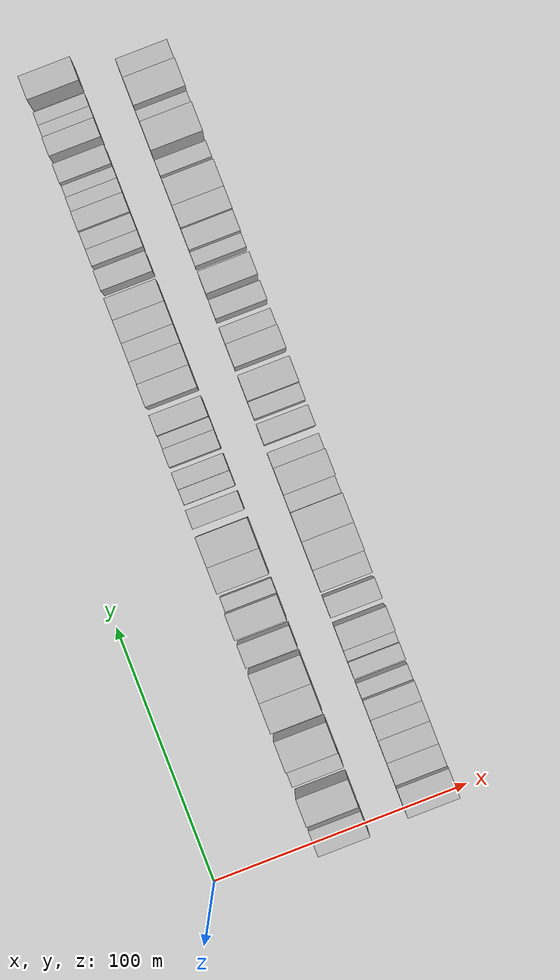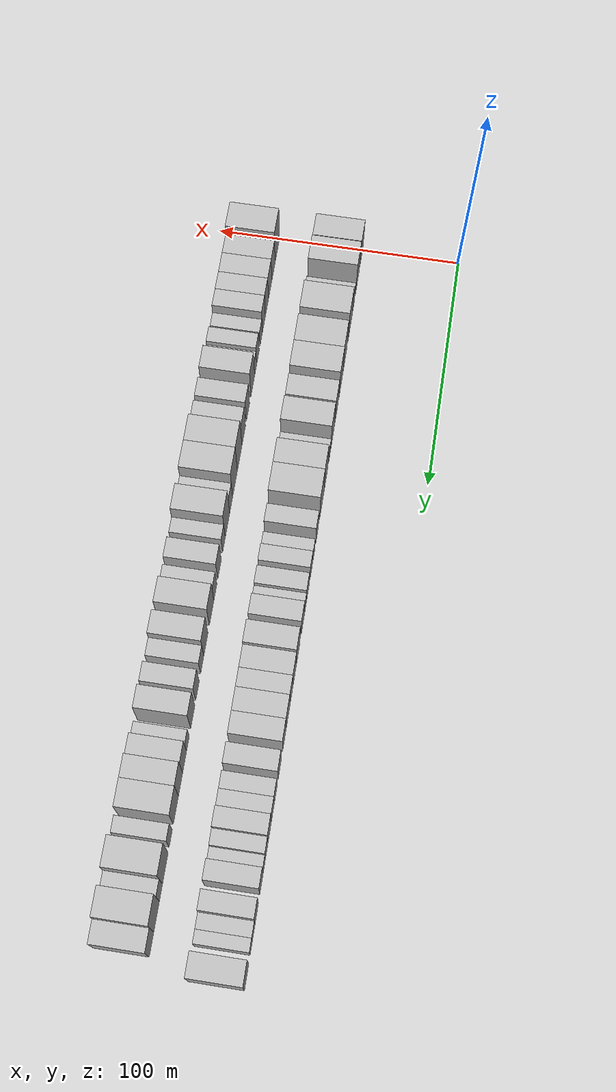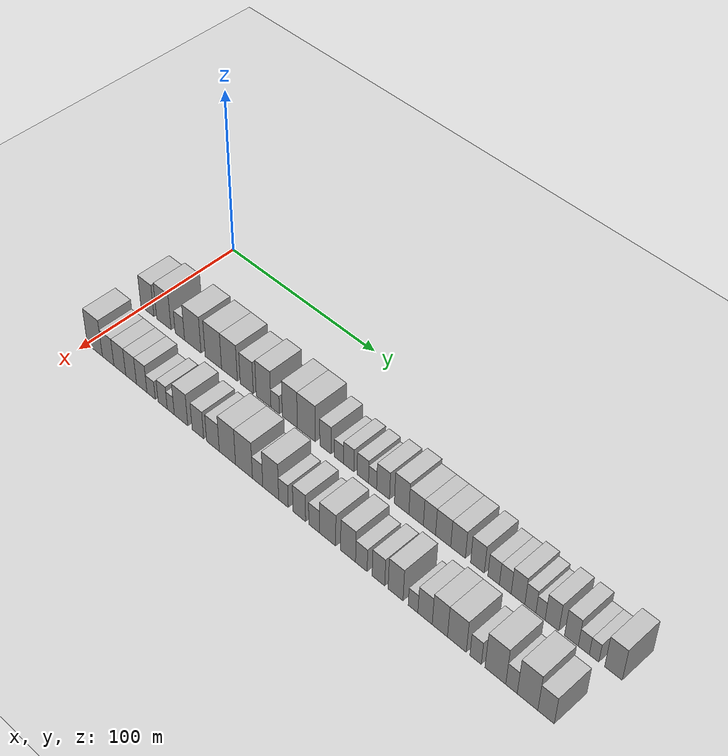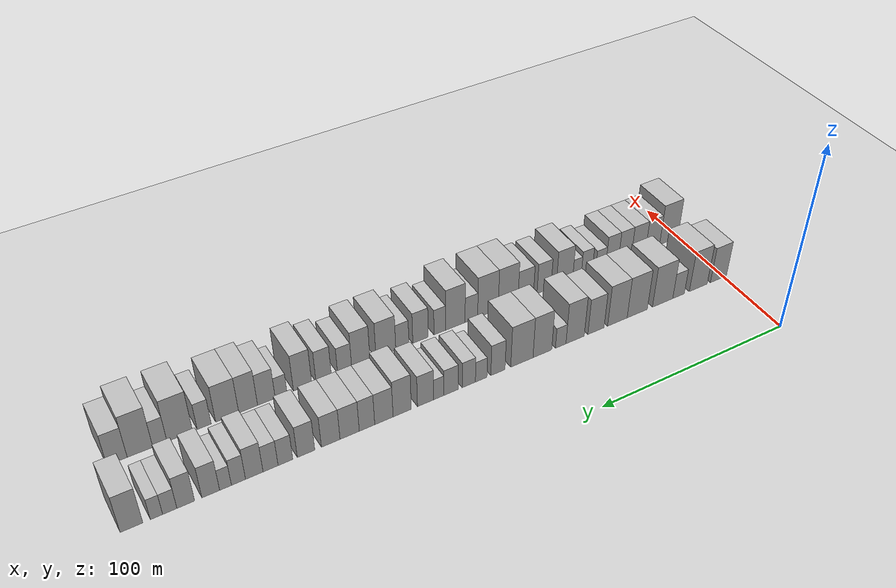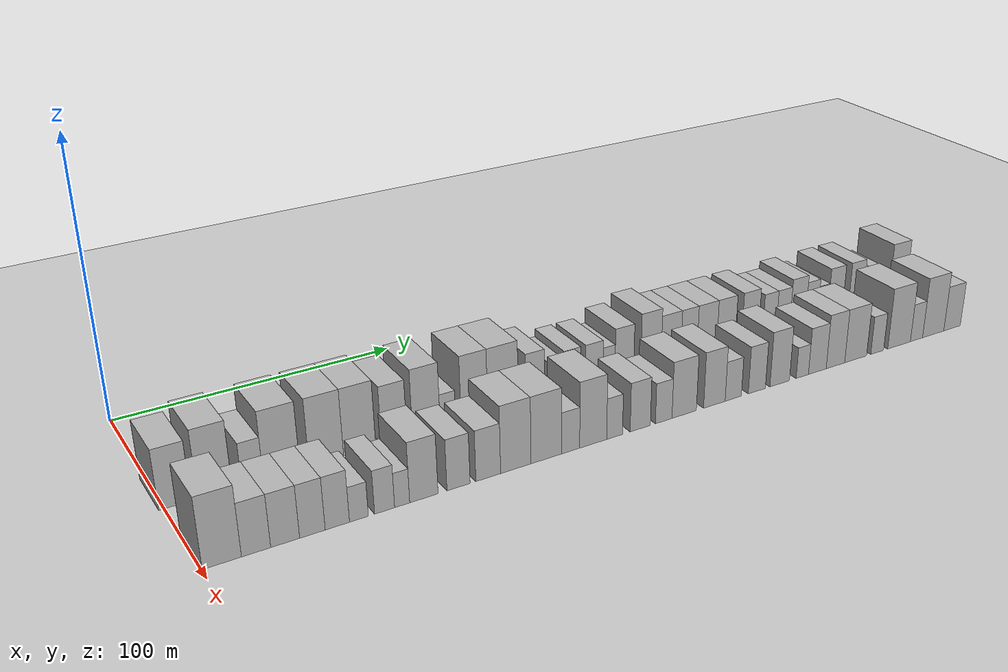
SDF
<sdf version="1.6">
 <world name="default">
  <include>
   <name>ground_plane_2</name>
   <uri>model://HANNAS_ground_plane</uri>
   <pose>100 0 0  0 0 0</pose>
  </include>
  <model name="building_33">
   <static>1</static>
   <pose>50.0000 3.3126 0 0.000000 0.000000 0.000000</pose>
   <link name="link">
    <pose>0 0 10.50 0 0 0</pose>
    <collision name="collision"><geometry><box><size>20.0000 9.8631 21.0000</size></box></geometry></collision>
    <visual name="visual">
     <cast_shadows>0</cast_shadows>
     <geometry><box><size>20.0000 9.8631 21.0000</size></box></geometry>
     <material>
      <script>
       <uri>model://HANNAS_wall/materials/scripts</uri>
       <uri>model://HANNAS_wall/materials/textures</uri>
       <name>vrc/HANNAS_wall</name>
      </script>
     </material>
    </visual>
   </link>
  </model>
  <model name="building_34">
   <static>1</static>
   <pose>50.0000 15.6161 0 0.000000 0.000000 0.000000</pose>
   <link name="link">
    <pose>0 0 12.00 0 0 0</pose>
    <collision name="collision"><geometry><box><size>20.0000 10.7440 24.0000</size></box></geometry></collision>
    <visual name="visual">
     <cast_shadows>0</cast_shadows>
     <geometry><box><size>20.0000 10.7440 24.0000</size></box></geometry>
     <material>
      <script>
       <uri>model://HANNAS_wall/materials/scripts</uri>
       <uri>model://HANNAS_wall/materials/textures</uri>
       <name>vrc/HANNAS_wall</name>
      </script>
     </material>
    </visual>
   </link>
  </model>
  <model name="building_35">
   <static>1</static>
   <pose>50.0000 27.4346 0 0.000000 0.000000 0.000000</pose>
   <link name="link">
    <pose>0 0 7.50 0 0 0</pose>
    <collision name="collision"><geometry><box><size>20.0000 6.8929 15.0000</size></box></geometry></collision>
    <visual name="visual">
     <cast_shadows>0</cast_shadows>
     <geometry><box><size>20.0000 6.8929 15.0000</size></box></geometry>
     <material>
      <script>
       <uri>model://HANNAS_wall/materials/scripts</uri>
       <uri>model://HANNAS_wall/materials/textures</uri>
       <name>vrc/HANNAS_wall</name>
      </script>
     </material>
    </visual>
   </link>
  </model>
  <model name="building_36">
   <static>1</static>
   <pose>50.0000 36.8483 0 0.000000 0.000000 0.000000</pose>
   <link name="link">
    <pose>0 0 12.00 0 0 0</pose>
    <collision name="collision"><geometry><box><size>20.0000 11.9345 24.0000</size></box></geometry></collision>
    <visual name="visual">
     <cast_shadows>0</cast_shadows>
     <geometry><box><size>20.0000 11.9345 24.0000</size></box></geometry>
     <material>
      <script>
       <uri>model://HANNAS_wall/materials/scripts</uri>
       <uri>model://HANNAS_wall/materials/textures</uri>
       <name>vrc/HANNAS_wall</name>
      </script>
     </material>
    </visual>
   </link>
  </model>
  <model name="building_37">
   <static>1</static>
   <pose>50.0000 51.6234 0 0.000000 0.000000 0.000000</pose>
   <link name="link">
    <pose>0 0 12.00 0 0 0</pose>
    <collision name="collision"><geometry><box><size>20.0000 11.6156 24.0000</size></box></geometry></collision>
    <visual name="visual">
     <cast_shadows>0</cast_shadows>
     <geometry><box><size>20.0000 11.6156 24.0000</size></box></geometry>
     <material>
      <script>
       <uri>model://HANNAS_wall/materials/scripts</uri>
       <uri>model://HANNAS_wall/materials/textures</uri>
       <name>vrc/HANNAS_wall</name>
      </script>
     </material>
    </visual>
   </link>
  </model>
  <model name="building_38">
   <static>1</static>
   <pose>50.0000 62.9704 0 0.000000 0.000000 0.000000</pose>
   <link name="link">
    <pose>0 0 12.00 0 0 0</pose>
    <collision name="collision"><geometry><box><size>20.0000 11.0785 24.0000</size></box></geometry></collision>
    <visual name="visual">
     <cast_shadows>0</cast_shadows>
     <geometry><box><size>20.0000 11.0785 24.0000</size></box></geometry>
     <material>
      <script>
       <uri>model://HANNAS_wall/materials/scripts</uri>
       <uri>model://HANNAS_wall/materials/textures</uri>
       <name>vrc/HANNAS_wall</name>
      </script>
     </material>
    </visual>
   </link>
  </model>
  <model name="building_39">
   <static>1</static>
   <pose>50.0000 75.0191 0 0.000000 0.000000 0.000000</pose>
   <link name="link">
    <pose>0 0 10.50 0 0 0</pose>
    <collision name="collision"><geometry><box><size>20.0000 9.0189 21.0000</size></box></geometry></collision>
    <visual name="visual">
     <cast_shadows>0</cast_shadows>
     <geometry><box><size>20.0000 9.0189 21.0000</size></box></geometry>
     <material>
      <script>
       <uri>model://HANNAS_wall/materials/scripts</uri>
       <uri>model://HANNAS_wall/materials/textures</uri>
       <name>vrc/HANNAS_wall</name>
      </script>
     </material>
    </visual>
   </link>
  </model>
  <model name="building_40">
   <static>1</static>
   <pose>50.0000 86.5434 0 0.000000 0.000000 0.000000</pose>
   <link name="link">
    <pose>0 0 12.00 0 0 0</pose>
    <collision name="collision"><geometry><box><size>20.0000 10.0297 24.0000</size></box></geometry></collision>
    <visual name="visual">
     <cast_shadows>0</cast_shadows>
     <geometry><box><size>20.0000 10.0297 24.0000</size></box></geometry>
     <material>
      <script>
       <uri>model://HANNAS_wall/materials/scripts</uri>
       <uri>model://HANNAS_wall/materials/textures</uri>
       <name>vrc/HANNAS_wall</name>
      </script>
     </material>
    </visual>
   </link>
  </model>
  <model name="building_41">
   <static>1</static>
   <pose>50.0000 94.4103 0 0.000000 0.000000 0.000000</pose>
   <link name="link">
    <pose>0 0 6.00 0 0 0</pose>
    <collision name="collision"><geometry><box><size>20.0000 5.7042 12.0000</size></box></geometry></collision>
    <visual name="visual">
     <cast_shadows>0</cast_shadows>
     <geometry><box><size>20.0000 5.7042 12.0000</size></box></geometry>
     <material>
      <script>
       <uri>model://HANNAS_wall/materials/scripts</uri>
       <uri>model://HANNAS_wall/materials/textures</uri>
       <name>vrc/HANNAS_wall</name>
      </script>
     </material>
    </visual>
   </link>
  </model>
  <model name="building_42">
   <static>1</static>
   <pose>50.0000 104.2619 0 0.000000 0.000000 0.000000</pose>
   <link name="link">
    <pose>0 0 12.00 0 0 0</pose>
    <collision name="collision"><geometry><box><size>20.0000 9.9989 24.0000</size></box></geometry></collision>
    <visual name="visual">
     <cast_shadows>0</cast_shadows>
     <geometry><box><size>20.0000 9.9989 24.0000</size></box></geometry>
     <material>
      <script>
       <uri>model://HANNAS_wall/materials/scripts</uri>
       <uri>model://HANNAS_wall/materials/textures</uri>
       <name>vrc/HANNAS_wall</name>
      </script>
     </material>
    </visual>
   </link>
  </model>
  <model name="building_43">
   <static>1</static>
   <pose>50.0000 115.1232 0 0.000000 0.000000 0.000000</pose>
   <link name="link">
    <pose>0 0 12.00 0 0 0</pose>
    <collision name="collision"><geometry><box><size>20.0000 11.7238 24.0000</size></box></geometry></collision>
    <visual name="visual">
     <cast_shadows>0</cast_shadows>
     <geometry><box><size>20.0000 11.7238 24.0000</size></box></geometry>
     <material>
      <script>
       <uri>model://HANNAS_wall/materials/scripts</uri>
       <uri>model://HANNAS_wall/materials/textures</uri>
       <name>vrc/HANNAS_wall</name>
      </script>
     </material>
    </visual>
   </link>
  </model>
  <model name="building_44">
   <static>1</static>
   <pose>50.0000 127.6352 0 0.000000 0.000000 0.000000</pose>
   <link name="link">
    <pose>0 0 9.00 0 0 0</pose>
    <collision name="collision"><geometry><box><size>20.0000 7.3003 18.0000</size></box></geometry></collision>
    <visual name="visual">
     <cast_shadows>0</cast_shadows>
     <geometry><box><size>20.0000 7.3003 18.0000</size></box></geometry>
     <material>
      <script>
       <uri>model://HANNAS_wall/materials/scripts</uri>
       <uri>model://HANNAS_wall/materials/textures</uri>
       <name>vrc/HANNAS_wall</name>
      </script>
     </material>
    </visual>
   </link>
  </model>
  <model name="building_45">
   <static>1</static>
   <pose>50.0000 136.2377 0 0.000000 0.000000 0.000000</pose>
   <link name="link">
    <pose>0 0 6.00 0 0 0</pose>
    <collision name="collision"><geometry><box><size>20.0000 5.9046 12.0000</size></box></geometry></collision>
    <visual name="visual">
     <cast_shadows>0</cast_shadows>
     <geometry><box><size>20.0000 5.9046 12.0000</size></box></geometry>
     <material>
      <script>
       <uri>model://HANNAS_wall/materials/scripts</uri>
       <uri>model://HANNAS_wall/materials/textures</uri>
       <name>vrc/HANNAS_wall</name>
      </script>
     </material>
    </visual>
   </link>
  </model>
  <model name="building_46">
   <static>1</static>
   <pose>50.0000 142.5359 0 0.000000 0.000000 0.000000</pose>
   <link name="link">
    <pose>0 0 7.50 0 0 0</pose>
    <collision name="collision"><geometry><box><size>20.0000 6.6918 15.0000</size></box></geometry></collision>
    <visual name="visual">
     <cast_shadows>0</cast_shadows>
     <geometry><box><size>20.0000 6.6918 15.0000</size></box></geometry>
     <material>
      <script>
       <uri>model://HANNAS_wall/materials/scripts</uri>
       <uri>model://HANNAS_wall/materials/textures</uri>
       <name>vrc/HANNAS_wall</name>
      </script>
     </material>
    </visual>
   </link>
  </model>
  <model name="building_47">
   <static>1</static>
   <pose>50.0000 151.4542 0 0.000000 0.000000 0.000000</pose>
   <link name="link">
    <pose>0 0 7.50 0 0 0</pose>
    <collision name="collision"><geometry><box><size>20.0000 7.1450 15.0000</size></box></geometry></collision>
    <visual name="visual">
     <cast_shadows>0</cast_shadows>
     <geometry><box><size>20.0000 7.1450 15.0000</size></box></geometry>
     <material>
      <script>
       <uri>model://HANNAS_wall/materials/scripts</uri>
       <uri>model://HANNAS_wall/materials/textures</uri>
       <name>vrc/HANNAS_wall</name>
      </script>
     </material>
    </visual>
   </link>
  </model>
  <model name="building_48">
   <static>1</static>
   <pose>50.0000 157.5393 0 0.000000 0.000000 0.000000</pose>
   <link name="link">
    <pose>0 0 6.00 0 0 0</pose>
    <collision name="collision"><geometry><box><size>20.0000 5.0250 12.0000</size></box></geometry></collision>
    <visual name="visual">
     <cast_shadows>0</cast_shadows>
     <geometry><box><size>20.0000 5.0250 12.0000</size></box></geometry>
     <material>
      <script>
       <uri>model://HANNAS_wall/materials/scripts</uri>
       <uri>model://HANNAS_wall/materials/textures</uri>
       <name>vrc/HANNAS_wall</name>
      </script>
     </material>
    </visual>
   </link>
  </model>
  <model name="building_49">
   <static>1</static>
   <pose>50.0000 164.0339 0 0.000000 0.000000 0.000000</pose>
   <link name="link">
    <pose>0 0 9.00 0 0 0</pose>
    <collision name="collision"><geometry><box><size>20.0000 7.9643 18.0000</size></box></geometry></collision>
    <visual name="visual">
     <cast_shadows>0</cast_shadows>
     <geometry><box><size>20.0000 7.9643 18.0000</size></box></geometry>
     <material>
      <script>
       <uri>model://HANNAS_wall/materials/scripts</uri>
       <uri>model://HANNAS_wall/materials/textures</uri>
       <name>vrc/HANNAS_wall</name>
      </script>
     </material>
    </visual>
   </link>
  </model>
  <model name="building_50">
   <static>1</static>
   <pose>50.0000 175.4038 0 0.000000 0.000000 0.000000</pose>
   <link name="link">
    <pose>0 0 10.50 0 0 0</pose>
    <collision name="collision"><geometry><box><size>20.0000 8.7755 21.0000</size></box></geometry></collision>
    <visual name="visual">
     <cast_shadows>0</cast_shadows>
     <geometry><box><size>20.0000 8.7755 21.0000</size></box></geometry>
     <material>
      <script>
       <uri>model://HANNAS_wall/materials/scripts</uri>
       <uri>model://HANNAS_wall/materials/textures</uri>
       <name>vrc/HANNAS_wall</name>
      </script>
     </material>
    </visual>
   </link>
  </model>
  <model name="building_51">
   <static>1</static>
   <pose>50.0000 184.1544 0 0.000000 0.000000 0.000000</pose>
   <link name="link">
    <pose>0 0 9.00 0 0 0</pose>
    <collision name="collision"><geometry><box><size>20.0000 8.7257 18.0000</size></box></geometry></collision>
    <visual name="visual">
     <cast_shadows>0</cast_shadows>
     <geometry><box><size>20.0000 8.7257 18.0000</size></box></geometry>
     <material>
      <script>
       <uri>model://HANNAS_wall/materials/scripts</uri>
       <uri>model://HANNAS_wall/materials/textures</uri>
       <name>vrc/HANNAS_wall</name>
      </script>
     </material>
    </visual>
   </link>
  </model>
  <model name="building_52">
   <static>1</static>
   <pose>50.0000 192.1560 0 0.000000 0.000000 0.000000</pose>
   <link name="link">
    <pose>0 0 9.00 0 0 0</pose>
    <collision name="collision"><geometry><box><size>20.0000 7.2775 18.0000</size></box></geometry></collision>
    <visual name="visual">
     <cast_shadows>0</cast_shadows>
     <geometry><box><size>20.0000 7.2775 18.0000</size></box></geometry>
     <material>
      <script>
       <uri>model://HANNAS_wall/materials/scripts</uri>
       <uri>model://HANNAS_wall/materials/textures</uri>
       <name>vrc/HANNAS_wall</name>
      </script>
     </material>
    </visual>
   </link>
  </model>
  <model name="building_53">
   <static>1</static>
   <pose>50.0000 200.2579 0 0.000000 0.000000 0.000000</pose>
   <link name="link">
    <pose>0 0 9.00 0 0 0</pose>
    <collision name="collision"><geometry><box><size>20.0000 8.9263 18.0000</size></box></geometry></collision>
    <visual name="visual">
     <cast_shadows>0</cast_shadows>
     <geometry><box><size>20.0000 8.9263 18.0000</size></box></geometry>
     <material>
      <script>
       <uri>model://HANNAS_wall/materials/scripts</uri>
       <uri>model://HANNAS_wall/materials/textures</uri>
       <name>vrc/HANNAS_wall</name>
      </script>
     </material>
    </visual>
   </link>
  </model>
  <model name="building_54">
   <static>1</static>
   <pose>50.0000 208.9794 0 0.000000 0.000000 0.000000</pose>
   <link name="link">
    <pose>0 0 9.00 0 0 0</pose>
    <collision name="collision"><geometry><box><size>20.0000 8.5167 18.0000</size></box></geometry></collision>
    <visual name="visual">
     <cast_shadows>0</cast_shadows>
     <geometry><box><size>20.0000 8.5167 18.0000</size></box></geometry>
     <material>
      <script>
       <uri>model://HANNAS_wall/materials/scripts</uri>
       <uri>model://HANNAS_wall/materials/textures</uri>
       <name>vrc/HANNAS_wall</name>
      </script>
     </material>
    </visual>
   </link>
  </model>
  <model name="building_55">
   <static>1</static>
   <pose>50.0000 220.1746 0 0.000000 0.000000 0.000000</pose>
   <link name="link">
    <pose>0 0 9.00 0 0 0</pose>
    <collision name="collision"><geometry><box><size>20.0000 7.8738 18.0000</size></box></geometry></collision>
    <visual name="visual">
     <cast_shadows>0</cast_shadows>
     <geometry><box><size>20.0000 7.8738 18.0000</size></box></geometry>
     <material>
      <script>
       <uri>model://HANNAS_wall/materials/scripts</uri>
       <uri>model://HANNAS_wall/materials/textures</uri>
       <name>vrc/HANNAS_wall</name>
      </script>
     </material>
    </visual>
   </link>
  </model>
  <model name="building_56">
   <static>1</static>
   <pose>50.0000 229.3746 0 0.000000 0.000000 0.000000</pose>
   <link name="link">
    <pose>0 0 7.50 0 0 0</pose>
    <collision name="collision"><geometry><box><size>20.0000 6.5262 15.0000</size></box></geometry></collision>
    <visual name="visual">
     <cast_shadows>0</cast_shadows>
     <geometry><box><size>20.0000 6.5262 15.0000</size></box></geometry>
     <material>
      <script>
       <uri>model://HANNAS_wall/materials/scripts</uri>
       <uri>model://HANNAS_wall/materials/textures</uri>
       <name>vrc/HANNAS_wall</name>
      </script>
     </material>
    </visual>
   </link>
  </model>
  <model name="building_57">
   <static>1</static>
   <pose>50.0000 235.9381 0 0.000000 0.000000 0.000000</pose>
   <link name="link">
    <pose>0 0 7.50 0 0 0</pose>
    <collision name="collision"><geometry><box><size>20.0000 6.6008 15.0000</size></box></geometry></collision>
    <visual name="visual">
     <cast_shadows>0</cast_shadows>
     <geometry><box><size>20.0000 6.6008 15.0000</size></box></geometry>
     <material>
      <script>
       <uri>model://HANNAS_wall/materials/scripts</uri>
       <uri>model://HANNAS_wall/materials/textures</uri>
       <name>vrc/HANNAS_wall</name>
      </script>
     </material>
    </visual>
   </link>
  </model>
  <model name="building_58">
   <static>1</static>
   <pose>50.0000 243.0425 0 0.000000 0.000000 0.000000</pose>
   <link name="link">
    <pose>0 0 9.00 0 0 0</pose>
    <collision name="collision"><geometry><box><size>20.0000 7.6080 18.0000</size></box></geometry></collision>
    <visual name="visual">
     <cast_shadows>0</cast_shadows>
     <geometry><box><size>20.0000 7.6080 18.0000</size></box></geometry>
     <material>
      <script>
       <uri>model://HANNAS_wall/materials/scripts</uri>
       <uri>model://HANNAS_wall/materials/textures</uri>
       <name>vrc/HANNAS_wall</name>
      </script>
     </material>
    </visual>
   </link>
  </model>
  <model name="building_59">
   <static>1</static>
   <pose>50.0000 249.8751 0 0.000000 0.000000 0.000000</pose>
   <link name="link">
    <pose>0 0 7.50 0 0 0</pose>
    <collision name="collision"><geometry><box><size>20.0000 6.0571 15.0000</size></box></geometry></collision>
    <visual name="visual">
     <cast_shadows>0</cast_shadows>
     <geometry><box><size>20.0000 6.0571 15.0000</size></box></geometry>
     <material>
      <script>
       <uri>model://HANNAS_wall/materials/scripts</uri>
       <uri>model://HANNAS_wall/materials/textures</uri>
       <name>vrc/HANNAS_wall</name>
      </script>
     </material>
    </visual>
   </link>
  </model>
  <model name="building_60">
   <static>1</static>
   <pose>50.0000 255.4219 0 0.000000 0.000000 0.000000</pose>
   <link name="link">
    <pose>0 0 6.00 0 0 0</pose>
    <collision name="collision"><geometry><box><size>20.0000 5.0365 12.0000</size></box></geometry></collision>
    <visual name="visual">
     <cast_shadows>0</cast_shadows>
     <geometry><box><size>20.0000 5.0365 12.0000</size></box></geometry>
     <material>
      <script>
       <uri>model://HANNAS_wall/materials/scripts</uri>
       <uri>model://HANNAS_wall/materials/textures</uri>
       <name>vrc/HANNAS_wall</name>
      </script>
     </material>
    </visual>
   </link>
  </model>
  <model name="building_61">
   <static>1</static>
   <pose>50.0000 261.6838 0 0.000000 0.000000 0.000000</pose>
   <link name="link">
    <pose>0 0 9.00 0 0 0</pose>
    <collision name="collision"><geometry><box><size>20.0000 7.4873 18.0000</size></box></geometry></collision>
    <visual name="visual">
     <cast_shadows>0</cast_shadows>
     <geometry><box><size>20.0000 7.4873 18.0000</size></box></geometry>
     <material>
      <script>
       <uri>model://HANNAS_wall/materials/scripts</uri>
       <uri>model://HANNAS_wall/materials/textures</uri>
       <name>vrc/HANNAS_wall</name>
      </script>
     </material>
    </visual>
   </link>
  </model>
  <model name="building_62">
   <static>1</static>
   <pose>50.0000 272.1125 0 0.000000 0.000000 0.000000</pose>
   <link name="link">
    <pose>0 0 9.00 0 0 0</pose>
    <collision name="collision"><geometry><box><size>20.0000 7.3701 18.0000</size></box></geometry></collision>
    <visual name="visual">
     <cast_shadows>0</cast_shadows>
     <geometry><box><size>20.0000 7.3701 18.0000</size></box></geometry>
     <material>
      <script>
       <uri>model://HANNAS_wall/materials/scripts</uri>
       <uri>model://HANNAS_wall/materials/textures</uri>
       <name>vrc/HANNAS_wall</name>
      </script>
     </material>
    </visual>
   </link>
  </model>
  <model name="building_63">
   <static>1</static>
   <pose>50.0000 278.7156 0 0.000000 0.000000 0.000000</pose>
   <link name="link">
    <pose>0 0 6.00 0 0 0</pose>
    <collision name="collision"><geometry><box><size>20.0000 5.8360 12.0000</size></box></geometry></collision>
    <visual name="visual">
     <cast_shadows>0</cast_shadows>
     <geometry><box><size>20.0000 5.8360 12.0000</size></box></geometry>
     <material>
      <script>
       <uri>model://HANNAS_wall/materials/scripts</uri>
       <uri>model://HANNAS_wall/materials/textures</uri>
       <name>vrc/HANNAS_wall</name>
      </script>
     </material>
    </visual>
   </link>
  </model>
  <model name="building_64">
   <static>1</static>
   <pose>50.0000 284.1427 0 0.000000 0.000000 0.000000</pose>
   <link name="link">
    <pose>0 0 6.00 0 0 0</pose>
    <collision name="collision"><geometry><box><size>20.0000 5.0182 12.0000</size></box></geometry></collision>
    <visual name="visual">
     <cast_shadows>0</cast_shadows>
     <geometry><box><size>20.0000 5.0182 12.0000</size></box></geometry>
     <material>
      <script>
       <uri>model://HANNAS_wall/materials/scripts</uri>
       <uri>model://HANNAS_wall/materials/textures</uri>
       <name>vrc/HANNAS_wall</name>
      </script>
     </material>
    </visual>
   </link>
  </model>
  <model name="building_65">
   <static>1</static>
   <pose>50.0000 294.2094 0 0.000000 0.000000 0.000000</pose>
   <link name="link">
    <pose>0 0 10.50 0 0 0</pose>
    <collision name="collision"><geometry><box><size>20.0000 9.1151 21.0000</size></box></geometry></collision>
    <visual name="visual">
     <cast_shadows>0</cast_shadows>
     <geometry><box><size>20.0000 9.1151 21.0000</size></box></geometry>
     <material>
      <script>
       <uri>model://HANNAS_wall/materials/scripts</uri>
       <uri>model://HANNAS_wall/materials/textures</uri>
       <name>vrc/HANNAS_wall</name>
      </script>
     </material>
    </visual>
   </link>
  </model>
  <model name="building_99">
   <static>1</static>
   <pose>85.0000 5.9352 0 0.000000 0.000000 0.000000</pose>
   <link name="link">
    <pose>0 0 12.00 0 0 0</pose>
    <collision name="collision"><geometry><box><size>20.0000 11.3335 24.0000</size></box></geometry></collision>
    <visual name="visual">
     <cast_shadows>0</cast_shadows>
     <geometry><box><size>20.0000 11.3335 24.0000</size></box></geometry>
     <material>
      <script>
       <uri>model://HANNAS_wall/materials/scripts</uri>
       <uri>model://HANNAS_wall/materials/textures</uri>
       <name>vrc/HANNAS_wall</name>
      </script>
     </material>
    </visual>
   </link>
  </model>
  <model name="building_100">
   <static>1</static>
   <pose>85.0000 15.9146 0 0.000000 0.000000 0.000000</pose>
   <link name="link">
    <pose>0 0 9.00 0 0 0</pose>
    <collision name="collision"><geometry><box><size>20.0000 8.6254 18.0000</size></box></geometry></collision>
    <visual name="visual">
     <cast_shadows>0</cast_shadows>
     <geometry><box><size>20.0000 8.6254 18.0000</size></box></geometry>
     <material>
      <script>
       <uri>model://HANNAS_wall/materials/scripts</uri>
       <uri>model://HANNAS_wall/materials/textures</uri>
       <name>vrc/HANNAS_wall</name>
      </script>
     </material>
    </visual>
   </link>
  </model>
  <model name="building_101">
   <static>1</static>
   <pose>85.0000 24.5877 0 0.000000 0.000000 0.000000</pose>
   <link name="link">
    <pose>0 0 9.00 0 0 0</pose>
    <collision name="collision"><geometry><box><size>20.0000 8.7207 18.0000</size></box></geometry></collision>
    <visual name="visual">
     <cast_shadows>0</cast_shadows>
     <geometry><box><size>20.0000 8.7207 18.0000</size></box></geometry>
     <material>
      <script>
       <uri>model://HANNAS_wall/materials/scripts</uri>
       <uri>model://HANNAS_wall/materials/textures</uri>
       <name>vrc/HANNAS_wall</name>
      </script>
     </material>
    </visual>
   </link>
  </model>
  <model name="building_102">
   <static>1</static>
   <pose>85.0000 32.8744 0 0.000000 0.000000 0.000000</pose>
   <link name="link">
    <pose>0 0 9.00 0 0 0</pose>
    <collision name="collision"><geometry><box><size>20.0000 7.8527 18.0000</size></box></geometry></collision>
    <visual name="visual">
     <cast_shadows>0</cast_shadows>
     <geometry><box><size>20.0000 7.8527 18.0000</size></box></geometry>
     <material>
      <script>
       <uri>model://HANNAS_wall/materials/scripts</uri>
       <uri>model://HANNAS_wall/materials/textures</uri>
       <name>vrc/HANNAS_wall</name>
      </script>
     </material>
    </visual>
   </link>
  </model>
  <model name="building_103">
   <static>1</static>
   <pose>85.0000 40.5969 0 0.000000 0.000000 0.000000</pose>
   <link name="link">
    <pose>0 0 9.00 0 0 0</pose>
    <collision name="collision"><geometry><box><size>20.0000 7.5923 18.0000</size></box></geometry></collision>
    <visual name="visual">
     <cast_shadows>0</cast_shadows>
     <geometry><box><size>20.0000 7.5923 18.0000</size></box></geometry>
     <material>
      <script>
       <uri>model://HANNAS_wall/materials/scripts</uri>
       <uri>model://HANNAS_wall/materials/textures</uri>
       <name>vrc/HANNAS_wall</name>
      </script>
     </material>
    </visual>
   </link>
  </model>
  <model name="building_104">
   <static>1</static>
   <pose>85.0000 47.3845 0 0.000000 0.000000 0.000000</pose>
   <link name="link">
    <pose>0 0 6.00 0 0 0</pose>
    <collision name="collision"><geometry><box><size>20.0000 5.9830 12.0000</size></box></geometry></collision>
    <visual name="visual">
     <cast_shadows>0</cast_shadows>
     <geometry><box><size>20.0000 5.9830 12.0000</size></box></geometry>
     <material>
      <script>
       <uri>model://HANNAS_wall/materials/scripts</uri>
       <uri>model://HANNAS_wall/materials/textures</uri>
       <name>vrc/HANNAS_wall</name>
      </script>
     </material>
    </visual>
   </link>
  </model>
  <model name="building_105">
   <static>1</static>
   <pose>85.0000 55.6219 0 0.000000 0.000000 0.000000</pose>
   <link name="link">
    <pose>0 0 7.50 0 0 0</pose>
    <collision name="collision"><geometry><box><size>20.0000 6.4918 15.0000</size></box></geometry></collision>
    <visual name="visual">
     <cast_shadows>0</cast_shadows>
     <geometry><box><size>20.0000 6.4918 15.0000</size></box></geometry>
     <material>
      <script>
       <uri>model://HANNAS_wall/materials/scripts</uri>
       <uri>model://HANNAS_wall/materials/textures</uri>
       <name>vrc/HANNAS_wall</name>
      </script>
     </material>
    </visual>
   </link>
  </model>
  <model name="building_106">
   <static>1</static>
   <pose>85.0000 61.3439 0 0.000000 0.000000 0.000000</pose>
   <link name="link">
    <pose>0 0 6.00 0 0 0</pose>
    <collision name="collision"><geometry><box><size>20.0000 4.9521 12.0000</size></box></geometry></collision>
    <visual name="visual">
     <cast_shadows>0</cast_shadows>
     <geometry><box><size>20.0000 4.9521 12.0000</size></box></geometry>
     <material>
      <script>
       <uri>model://HANNAS_wall/materials/scripts</uri>
       <uri>model://HANNAS_wall/materials/textures</uri>
       <name>vrc/HANNAS_wall</name>
      </script>
     </material>
    </visual>
   </link>
  </model>
  <model name="building_107">
   <static>1</static>
   <pose>85.0000 68.5449 0 0.000000 0.000000 0.000000</pose>
   <link name="link">
    <pose>0 0 10.50 0 0 0</pose>
    <collision name="collision"><geometry><box><size>20.0000 9.4499 21.0000</size></box></geometry></collision>
    <visual name="visual">
     <cast_shadows>0</cast_shadows>
     <geometry><box><size>20.0000 9.4499 21.0000</size></box></geometry>
     <material>
      <script>
       <uri>model://HANNAS_wall/materials/scripts</uri>
       <uri>model://HANNAS_wall/materials/textures</uri>
       <name>vrc/HANNAS_wall</name>
      </script>
     </material>
    </visual>
   </link>
  </model>
  <model name="building_108">
   <static>1</static>
   <pose>85.0000 80.2323 0 0.000000 0.000000 0.000000</pose>
   <link name="link">
    <pose>0 0 9.00 0 0 0</pose>
    <collision name="collision"><geometry><box><size>20.0000 7.9249 18.0000</size></box></geometry></collision>
    <visual name="visual">
     <cast_shadows>0</cast_shadows>
     <geometry><box><size>20.0000 7.9249 18.0000</size></box></geometry>
     <material>
      <script>
       <uri>model://HANNAS_wall/materials/scripts</uri>
       <uri>model://HANNAS_wall/materials/textures</uri>
       <name>vrc/HANNAS_wall</name>
      </script>
     </material>
    </visual>
   </link>
  </model>
  <model name="building_109">
   <static>1</static>
   <pose>85.0000 90.5266 0 0.000000 0.000000 0.000000</pose>
   <link name="link">
    <pose>0 0 9.00 0 0 0</pose>
    <collision name="collision"><geometry><box><size>20.0000 8.6637 18.0000</size></box></geometry></collision>
    <visual name="visual">
     <cast_shadows>0</cast_shadows>
     <geometry><box><size>20.0000 8.6637 18.0000</size></box></geometry>
     <material>
      <script>
       <uri>model://HANNAS_wall/materials/scripts</uri>
       <uri>model://HANNAS_wall/materials/textures</uri>
       <name>vrc/HANNAS_wall</name>
      </script>
     </material>
    </visual>
   </link>
  </model>
  <model name="building_110">
   <static>1</static>
   <pose>85.0000 100.3017 0 0.000000 0.000000 0.000000</pose>
   <link name="link">
    <pose>0 0 12.00 0 0 0</pose>
    <collision name="collision"><geometry><box><size>20.0000 10.8865 24.0000</size></box></geometry></collision>
    <visual name="visual">
     <cast_shadows>0</cast_shadows>
     <geometry><box><size>20.0000 10.8865 24.0000</size></box></geometry>
     <material>
      <script>
       <uri>model://HANNAS_wall/materials/scripts</uri>
       <uri>model://HANNAS_wall/materials/textures</uri>
       <name>vrc/HANNAS_wall</name>
      </script>
     </material>
    </visual>
   </link>
  </model>
  <model name="building_111">
   <static>1</static>
   <pose>85.0000 111.3383 0 0.000000 0.000000 0.000000</pose>
   <link name="link">
    <pose>0 0 12.00 0 0 0</pose>
    <collision name="collision"><geometry><box><size>20.0000 11.1868 24.0000</size></box></geometry></collision>
    <visual name="visual">
     <cast_shadows>0</cast_shadows>
     <geometry><box><size>20.0000 11.1868 24.0000</size></box></geometry>
     <material>
      <script>
       <uri>model://HANNAS_wall/materials/scripts</uri>
       <uri>model://HANNAS_wall/materials/textures</uri>
       <name>vrc/HANNAS_wall</name>
      </script>
     </material>
    </visual>
   </link>
  </model>
  <model name="building_112">
   <static>1</static>
   <pose>85.0000 120.3195 0 0.000000 0.000000 0.000000</pose>
   <link name="link">
    <pose>0 0 7.50 0 0 0</pose>
    <collision name="collision"><geometry><box><size>20.0000 6.7756 15.0000</size></box></geometry></collision>
    <visual name="visual">
     <cast_shadows>0</cast_shadows>
     <geometry><box><size>20.0000 6.7756 15.0000</size></box></geometry>
     <material>
      <script>
       <uri>model://HANNAS_wall/materials/scripts</uri>
       <uri>model://HANNAS_wall/materials/textures</uri>
       <name>vrc/HANNAS_wall</name>
      </script>
     </material>
    </visual>
   </link>
  </model>
  <model name="building_113">
   <static>1</static>
   <pose>85.0000 128.8410 0 0.000000 0.000000 0.000000</pose>
   <link name="link">
    <pose>0 0 12.00 0 0 0</pose>
    <collision name="collision"><geometry><box><size>20.0000 10.2673 24.0000</size></box></geometry></collision>
    <visual name="visual">
     <cast_shadows>0</cast_shadows>
     <geometry><box><size>20.0000 10.2673 24.0000</size></box></geometry>
     <material>
      <script>
       <uri>model://HANNAS_wall/materials/scripts</uri>
       <uri>model://HANNAS_wall/materials/textures</uri>
       <name>vrc/HANNAS_wall</name>
      </script>
     </material>
    </visual>
   </link>
  </model>
  <model name="building_114">
   <static>1</static>
   <pose>85.0000 137.0427 0 0.000000 0.000000 0.000000</pose>
   <link name="link">
    <pose>0 0 7.50 0 0 0</pose>
    <collision name="collision"><geometry><box><size>20.0000 6.1362 15.0000</size></box></geometry></collision>
    <visual name="visual">
     <cast_shadows>0</cast_shadows>
     <geometry><box><size>20.0000 6.1362 15.0000</size></box></geometry>
     <material>
      <script>
       <uri>model://HANNAS_wall/materials/scripts</uri>
       <uri>model://HANNAS_wall/materials/textures</uri>
       <name>vrc/HANNAS_wall</name>
      </script>
     </material>
    </visual>
   </link>
  </model>
  <model name="building_115">
   <static>1</static>
   <pose>85.0000 147.0984 0 0.000000 0.000000 0.000000</pose>
   <link name="link">
    <pose>0 0 9.00 0 0 0</pose>
    <collision name="collision"><geometry><box><size>20.0000 7.9753 18.0000</size></box></geometry></collision>
    <visual name="visual">
     <cast_shadows>0</cast_shadows>
     <geometry><box><size>20.0000 7.9753 18.0000</size></box></geometry>
     <material>
      <script>
       <uri>model://HANNAS_wall/materials/scripts</uri>
       <uri>model://HANNAS_wall/materials/textures</uri>
       <name>vrc/HANNAS_wall</name>
      </script>
     </material>
    </visual>
   </link>
  </model>
  <model name="building_116">
   <static>1</static>
   <pose>85.0000 156.4297 0 0.000000 0.000000 0.000000</pose>
   <link name="link">
    <pose>0 0 7.50 0 0 0</pose>
    <collision name="collision"><geometry><box><size>20.0000 6.6873 15.0000</size></box></geometry></collision>
    <visual name="visual">
     <cast_shadows>0</cast_shadows>
     <geometry><box><size>20.0000 6.6873 15.0000</size></box></geometry>
     <material>
      <script>
       <uri>model://HANNAS_wall/materials/scripts</uri>
       <uri>model://HANNAS_wall/materials/textures</uri>
       <name>vrc/HANNAS_wall</name>
      </script>
     </material>
    </visual>
   </link>
  </model>
  <model name="building_117">
   <static>1</static>
   <pose>85.0000 164.7725 0 0.000000 0.000000 0.000000</pose>
   <link name="link">
    <pose>0 0 10.50 0 0 0</pose>
    <collision name="collision"><geometry><box><size>20.0000 9.9983 21.0000</size></box></geometry></collision>
    <visual name="visual">
     <cast_shadows>0</cast_shadows>
     <geometry><box><size>20.0000 9.9983 21.0000</size></box></geometry>
     <material>
      <script>
       <uri>model://HANNAS_wall/materials/scripts</uri>
       <uri>model://HANNAS_wall/materials/textures</uri>
       <name>vrc/HANNAS_wall</name>
      </script>
     </material>
    </visual>
   </link>
  </model>
  <model name="building_118">
   <static>1</static>
   <pose>85.0000 177.3053 0 0.000000 0.000000 0.000000</pose>
   <link name="link">
    <pose>0 0 10.50 0 0 0</pose>
    <collision name="collision"><geometry><box><size>20.0000 9.0674 21.0000</size></box></geometry></collision>
    <visual name="visual">
     <cast_shadows>0</cast_shadows>
     <geometry><box><size>20.0000 9.0674 21.0000</size></box></geometry>
     <material>
      <script>
       <uri>model://HANNAS_wall/materials/scripts</uri>
       <uri>model://HANNAS_wall/materials/textures</uri>
       <name>vrc/HANNAS_wall</name>
      </script>
     </material>
    </visual>
   </link>
  </model>
  <model name="building_119">
   <static>1</static>
   <pose>85.0000 185.3036 0 0.000000 0.000000 0.000000</pose>
   <link name="link">
    <pose>0 0 7.50 0 0 0</pose>
    <collision name="collision"><geometry><box><size>20.0000 6.9291 15.0000</size></box></geometry></collision>
    <visual name="visual">
     <cast_shadows>0</cast_shadows>
     <geometry><box><size>20.0000 6.9291 15.0000</size></box></geometry>
     <material>
      <script>
       <uri>model://HANNAS_wall/materials/scripts</uri>
       <uri>model://HANNAS_wall/materials/textures</uri>
       <name>vrc/HANNAS_wall</name>
      </script>
     </material>
    </visual>
   </link>
  </model>
  <model name="building_120">
   <static>1</static>
   <pose>85.0000 195.4888 0 0.000000 0.000000 0.000000</pose>
   <link name="link">
    <pose>0 0 9.00 0 0 0</pose>
    <collision name="collision"><geometry><box><size>20.0000 7.4413 18.0000</size></box></geometry></collision>
    <visual name="visual">
     <cast_shadows>0</cast_shadows>
     <geometry><box><size>20.0000 7.4413 18.0000</size></box></geometry>
     <material>
      <script>
       <uri>model://HANNAS_wall/materials/scripts</uri>
       <uri>model://HANNAS_wall/materials/textures</uri>
       <name>vrc/HANNAS_wall</name>
      </script>
     </material>
    </visual>
   </link>
  </model>
  <model name="building_121">
   <static>1</static>
   <pose>85.0000 205.5647 0 0.000000 0.000000 0.000000</pose>
   <link name="link">
    <pose>0 0 10.50 0 0 0</pose>
    <collision name="collision"><geometry><box><size>20.0000 8.7105 21.0000</size></box></geometry></collision>
    <visual name="visual">
     <cast_shadows>0</cast_shadows>
     <geometry><box><size>20.0000 8.7105 21.0000</size></box></geometry>
     <material>
      <script>
       <uri>model://HANNAS_wall/materials/scripts</uri>
       <uri>model://HANNAS_wall/materials/textures</uri>
       <name>vrc/HANNAS_wall</name>
      </script>
     </material>
    </visual>
   </link>
  </model>
  <model name="building_122">
   <static>1</static>
   <pose>85.0000 215.7050 0 0.000000 0.000000 0.000000</pose>
   <link name="link">
    <pose>0 0 6.00 0 0 0</pose>
    <collision name="collision"><geometry><box><size>20.0000 5.5702 12.0000</size></box></geometry></collision>
    <visual name="visual">
     <cast_shadows>0</cast_shadows>
     <geometry><box><size>20.0000 5.5702 12.0000</size></box></geometry>
     <material>
      <script>
       <uri>model://HANNAS_wall/materials/scripts</uri>
       <uri>model://HANNAS_wall/materials/textures</uri>
       <name>vrc/HANNAS_wall</name>
      </script>
     </material>
    </visual>
   </link>
  </model>
  <model name="building_123">
   <static>1</static>
   <pose>85.0000 222.5725 0 0.000000 0.000000 0.000000</pose>
   <link name="link">
    <pose>0 0 9.00 0 0 0</pose>
    <collision name="collision"><geometry><box><size>20.0000 8.1649 18.0000</size></box></geometry></collision>
    <visual name="visual">
     <cast_shadows>0</cast_shadows>
     <geometry><box><size>20.0000 8.1649 18.0000</size></box></geometry>
     <material>
      <script>
       <uri>model://HANNAS_wall/materials/scripts</uri>
       <uri>model://HANNAS_wall/materials/textures</uri>
       <name>vrc/HANNAS_wall</name>
      </script>
     </material>
    </visual>
   </link>
  </model>
  <model name="building_124">
   <static>1</static>
   <pose>85.0000 230.9667 0 0.000000 0.000000 0.000000</pose>
   <link name="link">
    <pose>0 0 10.50 0 0 0</pose>
    <collision name="collision"><geometry><box><size>20.0000 8.6235 21.0000</size></box></geometry></collision>
    <visual name="visual">
     <cast_shadows>0</cast_shadows>
     <geometry><box><size>20.0000 8.6235 21.0000</size></box></geometry>
     <material>
      <script>
       <uri>model://HANNAS_wall/materials/scripts</uri>
       <uri>model://HANNAS_wall/materials/textures</uri>
       <name>vrc/HANNAS_wall</name>
      </script>
     </material>
    </visual>
   </link>
  </model>
  <model name="building_125">
   <static>1</static>
   <pose>85.0000 240.5034 0 0.000000 0.000000 0.000000</pose>
   <link name="link">
    <pose>0 0 10.50 0 0 0</pose>
    <collision name="collision"><geometry><box><size>20.0000 10.4499 21.0000</size></box></geometry></collision>
    <visual name="visual">
     <cast_shadows>0</cast_shadows>
     <geometry><box><size>20.0000 10.4499 21.0000</size></box></geometry>
     <material>
      <script>
       <uri>model://HANNAS_wall/materials/scripts</uri>
       <uri>model://HANNAS_wall/materials/textures</uri>
       <name>vrc/HANNAS_wall</name>
      </script>
     </material>
    </visual>
   </link>
  </model>
  <model name="building_126">
   <static>1</static>
   <pose>85.0000 250.8434 0 0.000000 0.000000 0.000000</pose>
   <link name="link">
    <pose>0 0 7.50 0 0 0</pose>
    <collision name="collision"><geometry><box><size>20.0000 6.2302 15.0000</size></box></geometry></collision>
    <visual name="visual">
     <cast_shadows>0</cast_shadows>
     <geometry><box><size>20.0000 6.2302 15.0000</size></box></geometry>
     <material>
      <script>
       <uri>model://HANNAS_wall/materials/scripts</uri>
       <uri>model://HANNAS_wall/materials/textures</uri>
       <name>vrc/HANNAS_wall</name>
      </script>
     </material>
    </visual>
   </link>
  </model>
  <model name="building_127">
   <static>1</static>
   <pose>85.0000 261.5738 0 0.000000 0.000000 0.000000</pose>
   <link name="link">
    <pose>0 0 12.00 0 0 0</pose>
    <collision name="collision"><geometry><box><size>20.0000 11.2305 24.0000</size></box></geometry></collision>
    <visual name="visual">
     <cast_shadows>0</cast_shadows>
     <geometry><box><size>20.0000 11.2305 24.0000</size></box></geometry>
     <material>
      <script>
       <uri>model://HANNAS_wall/materials/scripts</uri>
       <uri>model://HANNAS_wall/materials/textures</uri>
       <name>vrc/HANNAS_wall</name>
      </script>
     </material>
    </visual>
   </link>
  </model>
  <model name="building_128">
   <static>1</static>
   <pose>85.0000 270.2451 0 0.000000 0.000000 0.000000</pose>
   <link name="link">
    <pose>0 0 7.50 0 0 0</pose>
    <collision name="collision"><geometry><box><size>20.0000 6.1119 15.0000</size></box></geometry></collision>
    <visual name="visual">
     <cast_shadows>0</cast_shadows>
     <geometry><box><size>20.0000 6.1119 15.0000</size></box></geometry>
     <material>
      <script>
       <uri>model://HANNAS_wall/materials/scripts</uri>
       <uri>model://HANNAS_wall/materials/textures</uri>
       <name>vrc/HANNAS_wall</name>
      </script>
     </material>
    </visual>
   </link>
  </model>
  <model name="building_129">
   <static>1</static>
   <pose>85.0000 278.7330 0 0.000000 0.000000 0.000000</pose>
   <link name="link">
    <pose>0 0 12.00 0 0 0</pose>
    <collision name="collision"><geometry><box><size>20.0000 10.8639 24.0000</size></box></geometry></collision>
    <visual name="visual">
     <cast_shadows>0</cast_shadows>
     <geometry><box><size>20.0000 10.8639 24.0000</size></box></geometry>
     <material>
      <script>
       <uri>model://HANNAS_wall/materials/scripts</uri>
       <uri>model://HANNAS_wall/materials/textures</uri>
       <name>vrc/HANNAS_wall</name>
      </script>
     </material>
    </visual>
   </link>
  </model>
  <model name="building_130">
   <static>1</static>
   <pose>85.0000 288.4504 0 0.000000 0.000000 0.000000</pose>
   <link name="link">
    <pose>0 0 9.00 0 0 0</pose>
    <collision name="collision"><geometry><box><size>20.0000 8.5709 18.0000</size></box></geometry></collision>
    <visual name="visual">
     <cast_shadows>0</cast_shadows>
     <geometry><box><size>20.0000 8.5709 18.0000</size></box></geometry>
     <material>
      <script>
       <uri>model://HANNAS_wall/materials/scripts</uri>
       <uri>model://HANNAS_wall/materials/textures</uri>
       <name>vrc/HANNAS_wall</name>
      </script>
     </material>
    </visual>
   </link>
  </model>
 </world>
</sdf>
